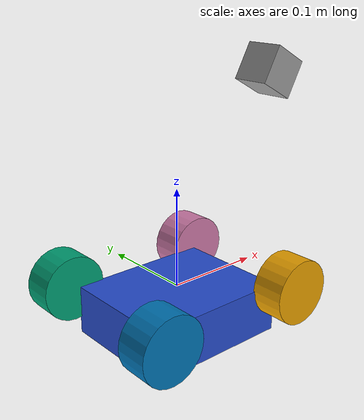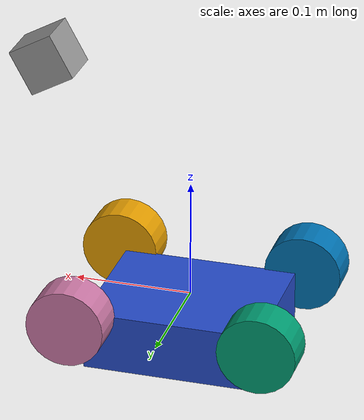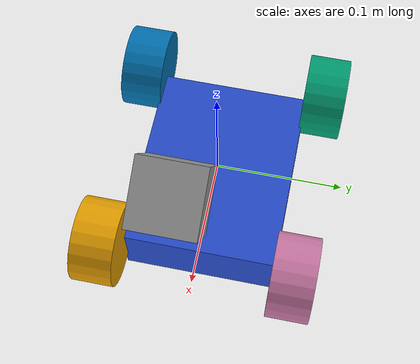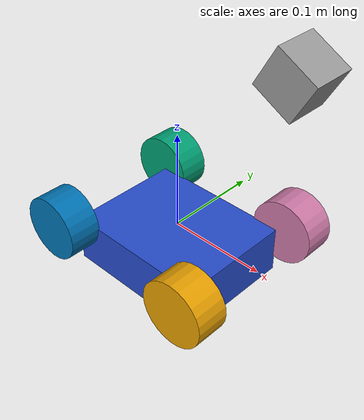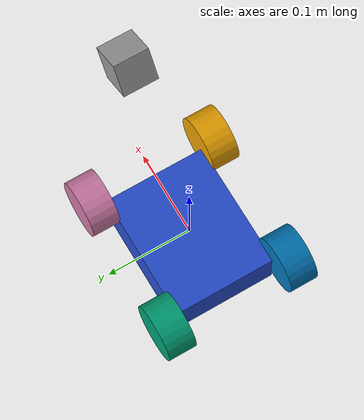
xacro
<?xml version="1.0"?>
<robot name="vehicle_v1" xmlns:xacro="http://www.ros.org/wiki/xacro">
    <xacro:property name="base_l" value="0.15" />
    <xacro:property name="base_w" value="0.12" />
    <xacro:property name="base_h" value="0.05" />

    <xacro:property name="wh_l" value="0.033" />
    <xacro:property name="wh_r" value="0.033" />
    <xacro:property name="wh_base_l" value="0.162" />
    <xacro:property name="wh_base_w" value="0.15" />
    <xacro:property name="wh_base_z" value="0.00" />

    <link name="base_link">
        <!-- pose and inertial -->
        <pose>0 0 0 0 0 0</pose>
        <inertial>
            <mass value="2" />
            <origin rpy="0 0 0" xyz="0 0 ${-base_h/2}" />
            <inertia ixx="0.206208333333" ixy="0" ixz="0" iyy="0.206208333333" iyz="0" izz="0.206208333333" />
        </inertial>
        <visual>
            <origin rpy="0 0 0" xyz="0 0 ${-base_h/2}" />
            <geometry>
                <box size="${base_l} ${base_w} ${base_h}" />
            </geometry>
            <material name="blue" />
        </visual>
    </link>

    <joint name="camera_joint" type="fixed">
        <axis xyz="0 1 0" />
        <origin xyz="0.121 0.0 0.2" rpy="0 0.5 0" />
        <parent link="base_link" />
        <child link="camera1_link" />
    </joint>

    <!-- Camera -->
    <link name="camera1_link">
        <collision>
            <origin xyz="0 0 0" rpy="0 0 0" />
            <geometry>
                <box size="0.04 0.04 0.04" />
            </geometry>
        </collision>

        <visual>
            <origin xyz="0 0 0" rpy="0 0 0" />
            <geometry>
                <box size="0.04 0.04 0.04" />
            </geometry>
            <material name="gray" />
        </visual>

        <inertial>
            <mass value="1e-5" />
            <origin xyz="0 0 0" rpy="0 0 0" />
            <inertia ixx="1e-6" ixy="0" ixz="0" iyy="1e-6" iyz="0" izz="1e-6" />
        </inertial>
    </link>

    <xacro:macro name="wheel" params="name xyz">
        <joint name="${name}_cont_joint" type="continuous">
            <origin rpy="0 0 0" xyz="0 0 0" />
            <child link="${name}_wheel_link" />
            <parent link="${name}_j_link" />
            <axis rpy="0 0 0" xyz="0 1 0" />
            <joint_properties damping="0.0" friction="0.0" />
            <dynamics damping="0.0" friction="0.0"/>
        </joint>
        <joint name="${name}_rev_joint" type="revolute">
            <origin rpy="0 0 0" xyz="${xyz}" />
            <child link="${name}_j_link" />
            <parent link="base_link" />
            <axis rpy="0 0 0" xyz="0 0 1" />
            <limit effort="10000" velocity="1" lower="-1.57" upper="1.57" />
            <dynamics damping="0.0" friction="0.0"/>
        </joint>
        <link name="${name}_wheel_link">
            <inertial>
                <mass value="0.1" />
                <origin rpy="0 1.5707 1.5707" xyz="0 0 0" />
                <inertia ixx="0.000526666666667" ixy="0" ixz="0" iyy="0.000526666666667" iyz="0" izz="0.001" />
            </inertial>
            <collision>
                <origin rpy="0 1.5707 1.5707" xyz="0 0 0" />
                <geometry>
                    <cylinder length="${wh_l}" radius="${wh_r}" />
                </geometry>
            </collision>
            <visual>
                <origin rpy="0 1.5707 1.5707" xyz="0 0 0" />
                <geometry>
                    <cylinder length="${wh_l}" radius="${wh_r}" />
                </geometry>
            </visual>
        </link>
        <link name="${name}_j_link">
            <inertial>
                <mass value="0.1" />
                <origin xyz="0 0 0" rpy="0 0 0" />
                <inertia ixx="1e-3" ixy="0" ixz="0" iyy="1e-3" iyz="0" izz="1e-3" />
            </inertial>
        </link>
        <transmission name="${name}_rev_trans">
            <type>transmission_interface/SimpleTransmission</type>
            <joint name="${name}_rev_joint">
                <hardwareInterface>EffortJointInterface</hardwareInterface>
            </joint>
            <actuator name="${name}_rev_motor">
                <hardwareInterface>EffortJointInterface</hardwareInterface>
                <mechanicalReduction>1</mechanicalReduction>
            </actuator>
        </transmission>

        <transmission name="${name}_cont_trans">
            <type>transmission_interface/SimpleTransmission</type>
            <joint name="${name}_cont_joint">
                <hardwareInterface>EffortJointInterface</hardwareInterface>
            </joint>
            <actuator name="${name}_cont_motor">
                <hardwareInterface>EffortJointInterface</hardwareInterface>
                <mechanicalReduction>1</mechanicalReduction>
            </actuator>
        </transmission>
    </xacro:macro>
    <xacro:macro name="wheel_b" params="name xyz">
        <joint name="${name}_cont_joint" type="continuous">
            <origin rpy="0 0 0" xyz="0 0 0" />
            <child link="${name}_wheel_link" />
            <parent link="${name}_j_link" />
            <axis rpy="0 0 0" xyz="0 1 0" />
            <joint_properties damping="0.0" friction="0.0" />
            <dynamics damping="0.0" friction="0.0"/>
        </joint>
        <joint name="${name}_f_joint" type="fixed">
            <origin rpy="0 0 0" xyz="${xyz}" />
            <child link="${name}_j_link" />
            <parent link="base_link" />
            <axis rpy="0 0 0" xyz="0 0 1" />
            <dynamics damping="0.0" friction="0.0"/>
        </joint>
        <link name="${name}_wheel_link">
            <inertial>
                <mass value="0.1" />
                <origin rpy="0 1.5707 1.5707" xyz="0 0 0" />
                <inertia ixx="0.000526666666667" ixy="0" ixz="0" iyy="0.000526666666667" iyz="0" izz="0.001" />
            </inertial>
            <collision>
                <origin rpy="0 1.5707 1.5707" xyz="0 0 0" />
                <geometry>
                    <cylinder length="${wh_l}" radius="${wh_r}" />
                </geometry>
            </collision>
            <visual>
                <origin rpy="0 1.5707 1.5707" xyz="0 0 0" />
                <geometry>
                    <cylinder length="${wh_l}" radius="${wh_r}" />
                </geometry>
            </visual>
        </link>
        <link name="${name}_j_link">
            <inertial>
                <mass value="1e-5" />
                <origin xyz="0 0 0" rpy="0 0 0" />
                <inertia ixx="1e-6" ixy="0" ixz="0" iyy="1e-6" iyz="0" izz="1e-6" />
            </inertial>
        </link>
    </xacro:macro>

    <xacro:wheel_b name="back_left" xyz="${-wh_base_l/2} ${wh_base_w/2} ${wh_base_z}" />
    <xacro:wheel_b name="back_right" xyz="${-wh_base_l/2} ${-wh_base_w/2} ${wh_base_z}" />
    <xacro:wheel name="front_left" xyz="${wh_base_l/2} ${wh_base_w/2} ${wh_base_z}" />
    <xacro:wheel name="front_right" xyz="${wh_base_l/2} ${-wh_base_w/2} ${wh_base_z}" />

    <gazebo reference="camera1_link">
        <sensor type="camera" name="camera1">
            <update_rate>30.0</update_rate>
            <camera name="head">
                <horizontal_fov>1.5</horizontal_fov>
                <image>
                    <width>1280</width>
                    <height>720</height>
                    <format>R8G8B8</format>
                </image>
                <clip>
                    <near>0.02</near>
                    <far>300</far>
                </clip>
                <noise>
                    <type>gaussian</type>
                    <!-- Noise is sampled independently per pixel on each frame.
               That pixel's noise value is added to each of its color
               channels, which at that point lie in the range [0,1]. -->
                    <mean>0.0</mean>
                    <stddev>0.007</stddev>
                </noise>
            </camera>
            <plugin name="camera_controller" filename="libgazebo_ros_camera.so">
                <alwaysOn>true</alwaysOn>
                <updateRate>0.0</updateRate>
                <cameraName>camera1</cameraName>
                <imageTopicName>image_raw</imageTopicName>
                <cameraInfoTopicName>camera_info</cameraInfoTopicName>
                <frameName>/camera1_link</frameName>
                <hackBaseline>0.07</hackBaseline>
                <distortionK1>0.0</distortionK1>
                <distortionK2>0.0</distortionK2>
                <distortionK3>0.0</distortionK3>
                <distortionT1>0.0</distortionT1>
                <distortionT2>0.0</distortionT2>
            </plugin>
        </sensor>
    </gazebo>
    <gazebo>
        <plugin name="gazebo_ros_control" filename="libgazebo_ros_control.so">
            <robotNamespace>/vehicle_v1</robotNamespace>
        </plugin>
    </gazebo>

</robot>
